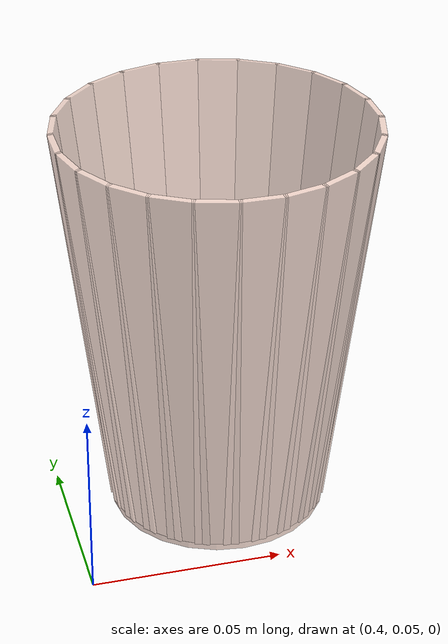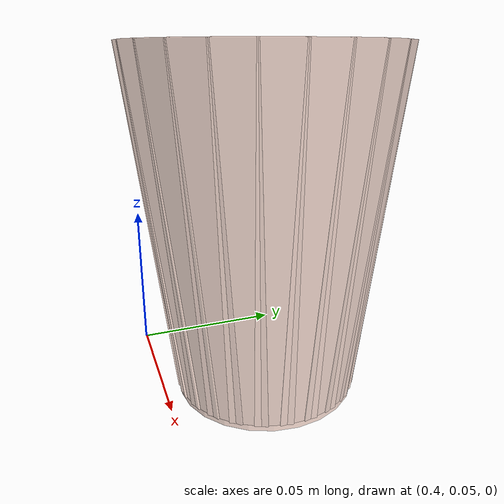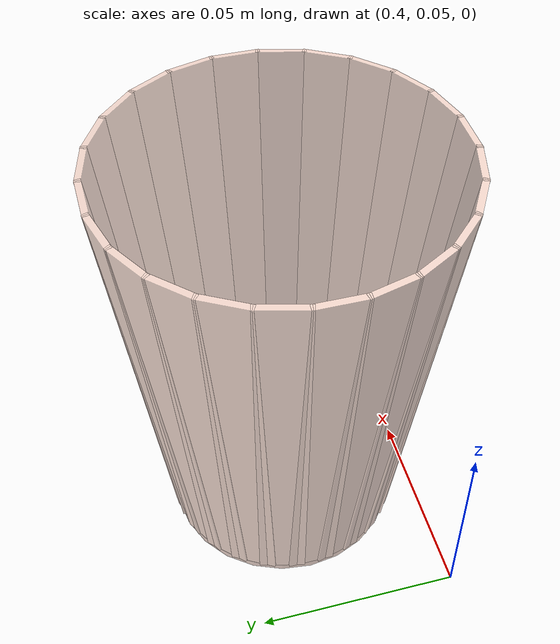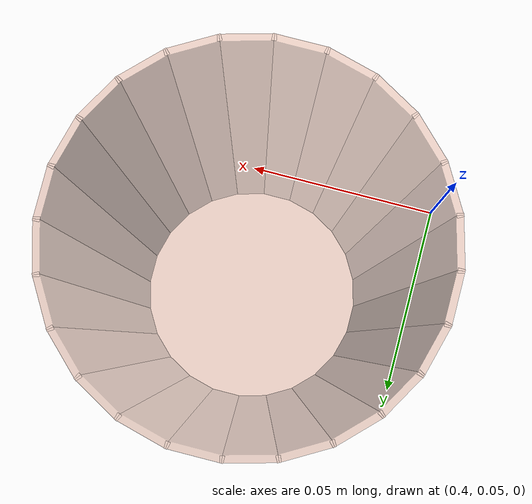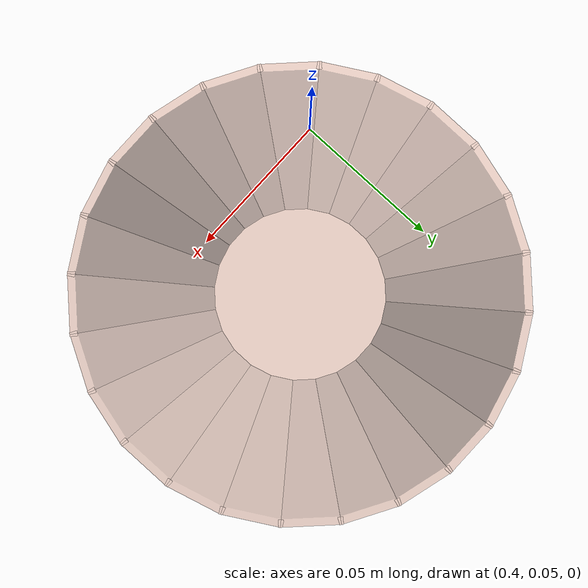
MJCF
<!-- GENERATED by scripts/build_yam_assets.py from teleop_sim/envs/yam_assets.py.
     Do not edit by hand: change the generator and re-run it. -->
<mujoco model="cups">
  <worldbody>
    <body name="cup" pos="0.442 0.084 0">
      <freejoint name="cup_free"/>
      <geom name="cup_base" type="cylinder" size="0.029 0.001" pos="0 0 0.001" density="900" rgba="0.95 0.8 0.74 0.7" friction="1 0.02 0.001" condim="4" solimp="0.95 0.99 0.001" solref="0.004 1"/>
      <geom name="cup_wall00" type="box" size="0.00075 0.005865 0.054390" pos="0.034750 0.000000 0.056" quat="0.998207 -0.000000 0.059861 0.000000" density="900" rgba="0.95 0.8 0.74 0.7" friction="1 0.02 0.001" condim="4" solimp="0.95 0.99 0.001" solref="0.004 1"/>
      <geom name="cup_wall01" type="box" size="0.00075 0.005865 0.054390" pos="0.033566 0.008994 0.056" quat="0.989667 -0.007813 0.059349 0.130292" density="900" rgba="0.95 0.8 0.74 0.7" friction="1 0.02 0.001" condim="4" solimp="0.95 0.99 0.001" solref="0.004 1"/>
      <geom name="cup_wall02" type="box" size="0.00075 0.005865 0.054390" pos="0.030094 0.017375 0.056" quat="0.964194 -0.015493 0.057821 0.258355" density="900" rgba="0.95 0.8 0.74 0.7" friction="1 0.02 0.001" condim="4" solimp="0.95 0.99 0.001" solref="0.004 1"/>
      <geom name="cup_wall03" type="box" size="0.00075 0.005865 0.054390" pos="0.024572 0.024572 0.056" quat="0.922223 -0.022908 0.055305 0.381997" density="900" rgba="0.95 0.8 0.74 0.7" friction="1 0.02 0.001" condim="4" solimp="0.95 0.99 0.001" solref="0.004 1"/>
      <geom name="cup_wall04" type="box" size="0.00075 0.005865 0.054390" pos="0.017375 0.030094 0.056" quat="0.864472 -0.029931 0.051841 0.499103" density="900" rgba="0.95 0.8 0.74 0.7" friction="1 0.02 0.001" condim="4" solimp="0.95 0.99 0.001" solref="0.004 1"/>
      <geom name="cup_wall05" type="box" size="0.00075 0.005865 0.054390" pos="0.008994 0.033566 0.056" quat="0.791931 -0.036441 0.047491 0.607670" density="900" rgba="0.95 0.8 0.74 0.7" friction="1 0.02 0.001" condim="4" solimp="0.95 0.99 0.001" solref="0.004 1"/>
      <geom name="cup_wall06" type="box" size="0.00075 0.005865 0.054390" pos="0.000000 0.034750 0.056" quat="0.705839 -0.042328 0.042328 0.705839" density="900" rgba="0.95 0.8 0.74 0.7" friction="1 0.02 0.001" condim="4" solimp="0.95 0.99 0.001" solref="0.004 1"/>
      <geom name="cup_wall07" type="box" size="0.00075 0.005865 0.054390" pos="-0.008994 0.033566 0.056" quat="0.607670 -0.047491 0.036441 0.791931" density="900" rgba="0.95 0.8 0.74 0.7" friction="1 0.02 0.001" condim="4" solimp="0.95 0.99 0.001" solref="0.004 1"/>
      <geom name="cup_wall08" type="box" size="0.00075 0.005865 0.054390" pos="-0.017375 0.030094 0.056" quat="0.499103 -0.051841 0.029931 0.864472" density="900" rgba="0.95 0.8 0.74 0.7" friction="1 0.02 0.001" condim="4" solimp="0.95 0.99 0.001" solref="0.004 1"/>
      <geom name="cup_wall09" type="box" size="0.00075 0.005865 0.054390" pos="-0.024572 0.024572 0.056" quat="0.381997 -0.055305 0.022908 0.922223" density="900" rgba="0.95 0.8 0.74 0.7" friction="1 0.02 0.001" condim="4" solimp="0.95 0.99 0.001" solref="0.004 1"/>
      <geom name="cup_wall10" type="box" size="0.00075 0.005865 0.054390" pos="-0.030094 0.017375 0.056" quat="0.258355 -0.057821 0.015493 0.964194" density="900" rgba="0.95 0.8 0.74 0.7" friction="1 0.02 0.001" condim="4" solimp="0.95 0.99 0.001" solref="0.004 1"/>
      <geom name="cup_wall11" type="box" size="0.00075 0.005865 0.054390" pos="-0.033566 0.008994 0.056" quat="0.130292 -0.059349 0.007813 0.989667" density="900" rgba="0.95 0.8 0.74 0.7" friction="1 0.02 0.001" condim="4" solimp="0.95 0.99 0.001" solref="0.004 1"/>
      <geom name="cup_wall12" type="box" size="0.00075 0.005865 0.054390" pos="-0.034750 0.000000 0.056" quat="0.000000 -0.059861 0.000000 0.998207" density="900" rgba="0.95 0.8 0.74 0.7" friction="1 0.02 0.001" condim="4" solimp="0.95 0.99 0.001" solref="0.004 1"/>
      <geom name="cup_wall13" type="box" size="0.00075 0.005865 0.054390" pos="-0.033566 -0.008994 0.056" quat="-0.130292 -0.059349 -0.007813 0.989667" density="900" rgba="0.95 0.8 0.74 0.7" friction="1 0.02 0.001" condim="4" solimp="0.95 0.99 0.001" solref="0.004 1"/>
      <geom name="cup_wall14" type="box" size="0.00075 0.005865 0.054390" pos="-0.030094 -0.017375 0.056" quat="-0.258355 -0.057821 -0.015493 0.964194" density="900" rgba="0.95 0.8 0.74 0.7" friction="1 0.02 0.001" condim="4" solimp="0.95 0.99 0.001" solref="0.004 1"/>
      <geom name="cup_wall15" type="box" size="0.00075 0.005865 0.054390" pos="-0.024572 -0.024572 0.056" quat="-0.381997 -0.055305 -0.022908 0.922223" density="900" rgba="0.95 0.8 0.74 0.7" friction="1 0.02 0.001" condim="4" solimp="0.95 0.99 0.001" solref="0.004 1"/>
      <geom name="cup_wall16" type="box" size="0.00075 0.005865 0.054390" pos="-0.017375 -0.030094 0.056" quat="-0.499103 -0.051841 -0.029931 0.864472" density="900" rgba="0.95 0.8 0.74 0.7" friction="1 0.02 0.001" condim="4" solimp="0.95 0.99 0.001" solref="0.004 1"/>
      <geom name="cup_wall17" type="box" size="0.00075 0.005865 0.054390" pos="-0.008994 -0.033566 0.056" quat="-0.607670 -0.047491 -0.036441 0.791931" density="900" rgba="0.95 0.8 0.74 0.7" friction="1 0.02 0.001" condim="4" solimp="0.95 0.99 0.001" solref="0.004 1"/>
      <geom name="cup_wall18" type="box" size="0.00075 0.005865 0.054390" pos="-0.000000 -0.034750 0.056" quat="-0.705839 -0.042328 -0.042328 0.705839" density="900" rgba="0.95 0.8 0.74 0.7" friction="1 0.02 0.001" condim="4" solimp="0.95 0.99 0.001" solref="0.004 1"/>
      <geom name="cup_wall19" type="box" size="0.00075 0.005865 0.054390" pos="0.008994 -0.033566 0.056" quat="-0.791931 -0.036441 -0.047491 0.607670" density="900" rgba="0.95 0.8 0.74 0.7" friction="1 0.02 0.001" condim="4" solimp="0.95 0.99 0.001" solref="0.004 1"/>
      <geom name="cup_wall20" type="box" size="0.00075 0.005865 0.054390" pos="0.017375 -0.030094 0.056" quat="-0.864472 -0.029931 -0.051841 0.499103" density="900" rgba="0.95 0.8 0.74 0.7" friction="1 0.02 0.001" condim="4" solimp="0.95 0.99 0.001" solref="0.004 1"/>
      <geom name="cup_wall21" type="box" size="0.00075 0.005865 0.054390" pos="0.024572 -0.024572 0.056" quat="-0.922223 -0.022908 -0.055305 0.381997" density="900" rgba="0.95 0.8 0.74 0.7" friction="1 0.02 0.001" condim="4" solimp="0.95 0.99 0.001" solref="0.004 1"/>
      <geom name="cup_wall22" type="box" size="0.00075 0.005865 0.054390" pos="0.030094 -0.017375 0.056" quat="-0.964194 -0.015493 -0.057821 0.258355" density="900" rgba="0.95 0.8 0.74 0.7" friction="1 0.02 0.001" condim="4" solimp="0.95 0.99 0.001" solref="0.004 1"/>
      <geom name="cup_wall23" type="box" size="0.00075 0.005865 0.054390" pos="0.033566 -0.008994 0.056" quat="-0.989667 -0.007813 -0.059349 0.130292" density="900" rgba="0.95 0.8 0.74 0.7" friction="1 0.02 0.001" condim="4" solimp="0.95 0.99 0.001" solref="0.004 1"/>
    </body>
  </worldbody>
</mujoco>
